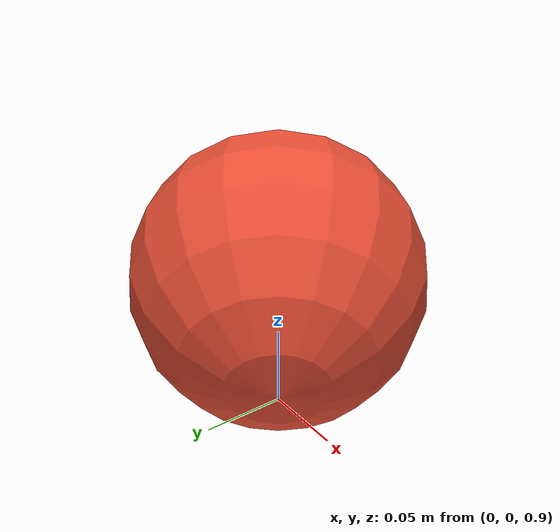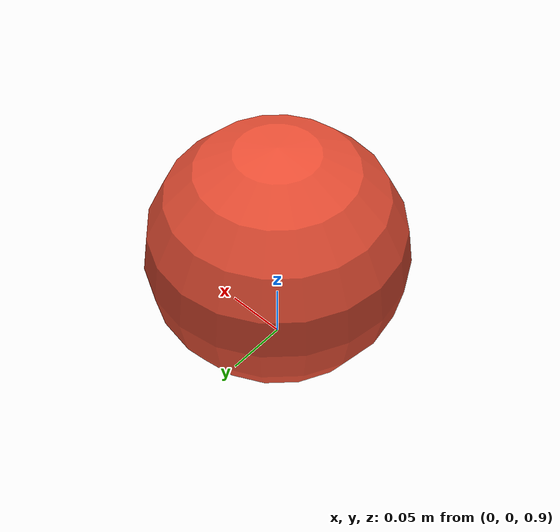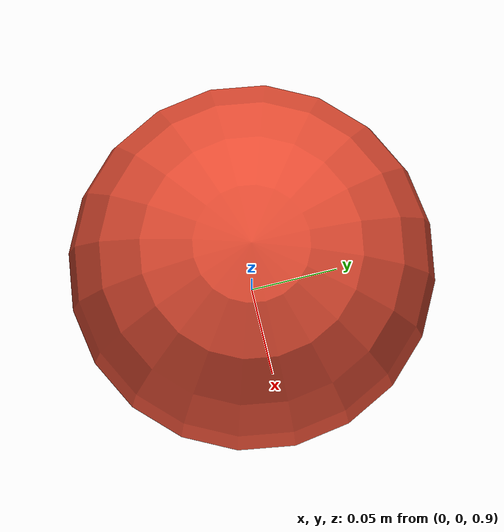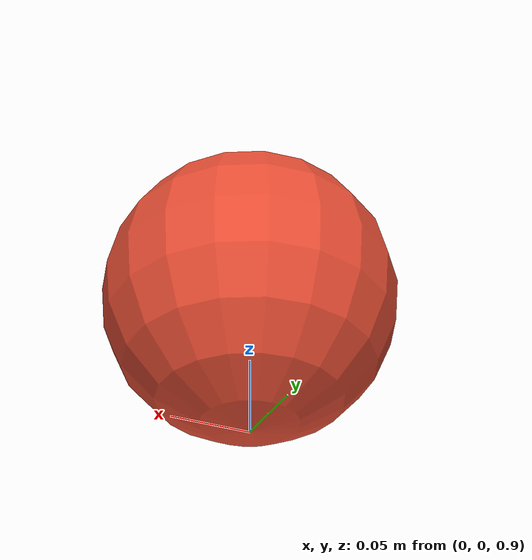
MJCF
<mujoco model="sensor_contact">
  <option timestep="0.002"/>
  <worldbody>
    <geom name="floor" type="plane" size="2 2 .1"/>
    <body name="ball" pos="0 0 1">
      <freejoint/>
      <geom name="ball_geom" type="sphere" size="0.1" mass="1" rgba=".9 .3 .2 1"/>
      <site name="imu" size="0.01"/>
    </body>
  </worldbody>
  <sensor>
    <framepos name="ball_position" objtype="body" objname="ball"/>
    <velocimeter name="local_velocity" site="imu"/>
    <accelerometer name="local_accel" site="imu"/>
  </sensor>
</mujoco>
